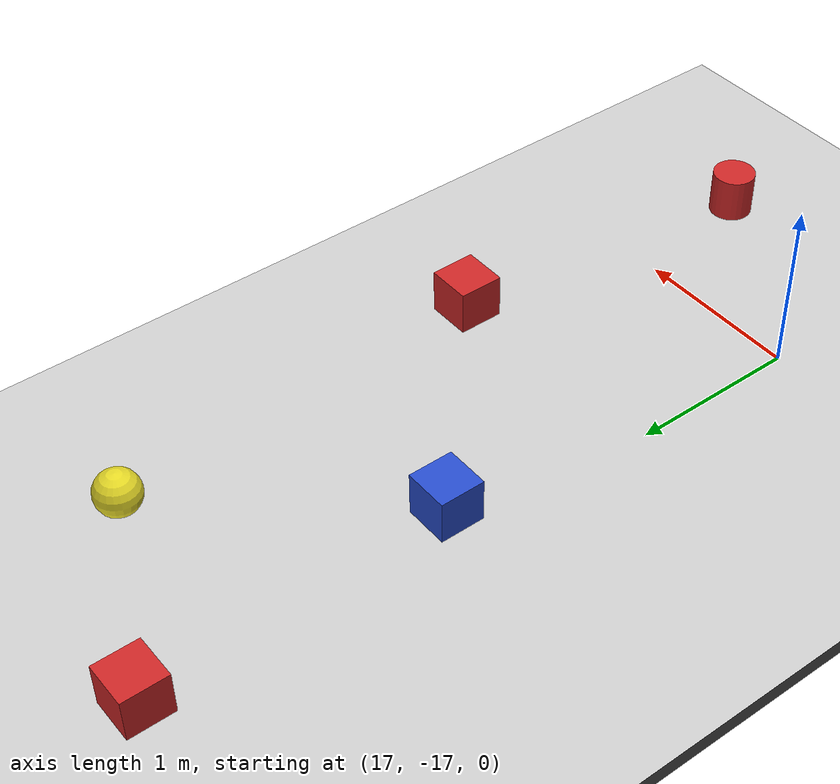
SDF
<sdf version="1.7">
 <world name="default">
  <model name="ground_plane">
   <static>1</static>
   <link name="link">
    <collision name="collision">
     <geometry><plane><normal>0 0 1</normal><size>100 100</size></plane></geometry>
     <surface><friction><ode><mu>100</mu><mu2>50</mu2></ode></friction></surface>
    </collision>
    <visual name="visual">
     <cast_shadows>0</cast_shadows>
     <geometry><plane><normal>0 0 1</normal><size>100 100</size></plane></geometry>
     <material>
      <script><uri>file://media/materials/scripts/gazebo.material</uri><name>Gazebo/Grey</name></script>
     </material>
    </visual>
    <velocity_decay><linear>0</linear><angular>0</angular></velocity_decay>
   </link>
  </model>
  <model name="asphalt_plane">
   <static>1</static>
   <link name="link">
    <collision name="collision"><geometry><box><size>20 20 0.1</size></box></geometry></collision>
    <visual name="visual">
     <cast_shadows>0</cast_shadows>
     <geometry><box><size>20 20 0.1</size></box></geometry>
     <material>
      <script>
       <uri>model://asphalt_plane/materials/scripts</uri>
       <uri>model://asphalt_plane/materials/textures</uri>
       <name>vrc/asphalt</name>
      </script>
     </material>
    </visual>
   </link>
   <pose>-9.73878 -10.1135 0 0 -0 0</pose>
  </model>
  <model name="unit_box_red_25_clone">
   <link name="link">
    <inertial>
     <mass>1</mass>
     <inertia>
      <ixx>0.166667</ixx>
      <ixy>0</ixy>
      <ixz>0</ixz>
      <iyy>0.166667</iyy>
      <iyz>0</iyz>
      <izz>0.166667</izz>
     </inertia>
    </inertial>
    <visual name="visual">
     <geometry><box><size>0.25 0.25 0.25</size></box></geometry>
     <material>
      <script><name>Gazebo/Red</name><uri>file://media/materials/scripts/gazebo.material</uri></script>
      <shader type="vertex"><normal_map>__default__</normal_map></shader>
      <ambient>1 0 0 1</ambient>
      <diffuse>1 0 0 1</diffuse>
      <specular>0.1 0.1 0.1 1</specular>
      <emissive>0 0 0 1</emissive>
     </material>
    </visual>
    <collision name="collision">
     <geometry><box><size>1 1 1</size></box></geometry>
     <surface>
      <friction>
       <ode><mu>1</mu><mu2>1</mu2><fdir1>0 0 0</fdir1><slip1>0</slip1><slip2>0</slip2></ode>
       <torsional>
        <coefficient>1</coefficient>
        <patch_radius>0</patch_radius>
        <surface_radius>0</surface_radius>
        <use_patch_radius>1</use_patch_radius>
        <ode><slip>0</slip></ode>
       </torsional>
      </friction>
      <bounce><restitution_coefficient>0</restitution_coefficient><threshold>1e+06</threshold></bounce>
      <contact>
       <collide_without_contact>0</collide_without_contact>
       <collide_without_contact_bitmask>1</collide_without_contact_bitmask>
       <collide_bitmask>1</collide_bitmask>
       <ode>
        <soft_cfm>0</soft_cfm>
        <soft_erp>0.2</soft_erp>
        <kp>1e+13</kp>
        <kd>1</kd>
        <max_vel>0.01</max_vel>
        <min_depth>0</min_depth>
       </ode>
       <bullet>
        <split_impulse>1</split_impulse>
        <split_impulse_penetration_threshold>-0.01</split_impulse_penetration_threshold>
        <soft_cfm>0</soft_cfm>
        <soft_erp>0.2</soft_erp>
        <kp>1e+13</kp>
        <kd>1</kd>
       </bullet>
      </contact>
     </surface>
    </collision>
   </link>
   <static>0</static>
   <pose>16.8257 -12.8406 0.549995 -9e-06 -1e-06 3.9e-05</pose>
  </model>
  <model name="unit_box_red_25_clone_2">
   <link name="link">
    <inertial>
     <mass>1</mass>
     <inertia>
      <ixx>0.166667</ixx>
      <ixy>0</ixy>
      <ixz>0</ixz>
      <iyy>0.166667</iyy>
      <iyz>0</iyz>
      <izz>0.166667</izz>
     </inertia>
    </inertial>
    <visual name="visual">
     <geometry><box><size>0.25 0.25 0.25</size></box></geometry>
     <material>
      <script><name>Gazebo/Red</name><uri>file://media/materials/scripts/gazebo.material</uri></script>
      <shader type="vertex"><normal_map>__default__</normal_map></shader>
      <ambient>1 0 0 1</ambient>
      <diffuse>1 0 0 1</diffuse>
      <specular>0.1 0.1 0.1 1</specular>
      <emissive>0 0 0 1</emissive>
     </material>
    </visual>
    <collision name="collision">
     <geometry><box><size>1 1 1</size></box></geometry>
     <surface>
      <friction>
       <ode><mu>1</mu><mu2>1</mu2><fdir1>0 0 0</fdir1><slip1>0</slip1><slip2>0</slip2></ode>
       <torsional>
        <coefficient>1</coefficient>
        <patch_radius>0</patch_radius>
        <surface_radius>0</surface_radius>
        <use_patch_radius>1</use_patch_radius>
        <ode><slip>0</slip></ode>
       </torsional>
      </friction>
      <bounce><restitution_coefficient>0</restitution_coefficient><threshold>1e+06</threshold></bounce>
      <contact>
       <collide_without_contact>0</collide_without_contact>
       <collide_without_contact_bitmask>1</collide_without_contact_bitmask>
       <collide_bitmask>1</collide_bitmask>
       <ode>
        <soft_cfm>0</soft_cfm>
        <soft_erp>0.2</soft_erp>
        <kp>1e+13</kp>
        <kd>1</kd>
        <max_vel>0.01</max_vel>
        <min_depth>0</min_depth>
       </ode>
       <bullet>
        <split_impulse>1</split_impulse>
        <split_impulse_penetration_threshold>-0.01</split_impulse_penetration_threshold>
        <soft_cfm>0</soft_cfm>
        <soft_erp>0.2</soft_erp>
        <kp>1e+13</kp>
        <kd>1</kd>
       </bullet>
      </contact>
     </surface>
    </collision>
   </link>
   <static>0</static>
   <pose>18.0023 -15.5728 0.549995 -9e-06 -1e-06 3.9e-05</pose>
  </model>
  <model name="unit_box_blue_25_clone">
   <link name="link">
    <inertial>
     <mass>1</mass>
     <inertia>
      <ixx>0.166667</ixx>
      <ixy>0</ixy>
      <ixz>0</ixz>
      <iyy>0.166667</iyy>
      <iyz>0</iyz>
      <izz>0.166667</izz>
     </inertia>
    </inertial>
    <visual name="visual">
     <geometry><box><size>0.25 0.25 0.25</size></box></geometry>
     <material>
      <script><name>Gazebo/Blue</name><uri>file://media/materials/scripts/gazebo.material</uri></script>
      <shader type="vertex"><normal_map>__default__</normal_map></shader>
      <ambient>0 0 1 1</ambient>
      <diffuse>0 0 1 1</diffuse>
      <specular>0.1 0.1 0.1 1</specular>
      <emissive>0 0 0 1</emissive>
     </material>
    </visual>
    <collision name="collision">
     <geometry><box><size>1 1 1</size></box></geometry>
     <surface>
      <friction>
       <ode><mu>1</mu><mu2>1</mu2><fdir1>0 0 0</fdir1><slip1>0</slip1><slip2>0</slip2></ode>
       <torsional>
        <coefficient>1</coefficient>
        <patch_radius>0</patch_radius>
        <surface_radius>0</surface_radius>
        <use_patch_radius>1</use_patch_radius>
        <ode><slip>0</slip></ode>
       </torsional>
      </friction>
      <bounce><restitution_coefficient>0</restitution_coefficient><threshold>1e+06</threshold></bounce>
      <contact>
       <collide_without_contact>0</collide_without_contact>
       <collide_without_contact_bitmask>1</collide_without_contact_bitmask>
       <collide_bitmask>1</collide_bitmask>
       <ode>
        <soft_cfm>0</soft_cfm>
        <soft_erp>0.2</soft_erp>
        <kp>1e+13</kp>
        <kd>1</kd>
        <max_vel>0.01</max_vel>
        <min_depth>0</min_depth>
       </ode>
       <bullet>
        <split_impulse>1</split_impulse>
        <split_impulse_penetration_threshold>-0.01</split_impulse_penetration_threshold>
        <soft_cfm>0</soft_cfm>
        <soft_erp>0.2</soft_erp>
        <kp>1e+13</kp>
        <kd>1</kd>
       </bullet>
      </contact>
     </surface>
    </collision>
   </link>
   <static>0</static>
   <pose>16.8891 -14.5699 0.55 0 -0 0</pose>
  </model>
  <model name="unit_cylinder_red_25_clone">
   <link name="link">
    <inertial>
     <mass>1</mass>
     <inertia><ixx>0.145833</ixx><ixy>0</ixy><ixz>0</ixz><iyy>0.145833</iyy><iyz>0</iyz><izz>0.125</izz></inertia>
    </inertial>
    <visual name="visual">
     <geometry><cylinder><radius>0.12</radius><length>0.25</length></cylinder></geometry>
     <material>
      <script><name>Gazebo/Red</name><uri>file://media/materials/scripts/gazebo.material</uri></script>
      <shader type="vertex"><normal_map>__default__</normal_map></shader>
      <ambient>1 0 0 1</ambient>
      <diffuse>1 0 0 1</diffuse>
      <specular>0.1 0.1 0.1 1</specular>
      <emissive>0 0 0 1</emissive>
     </material>
    </visual>
    <collision name="collision">
     <geometry><cylinder><radius>0.5</radius><length>1</length></cylinder></geometry>
     <surface>
      <friction>
       <ode><mu>1</mu><mu2>1</mu2><fdir1>0 0 0</fdir1><slip1>0</slip1><slip2>0</slip2></ode>
       <torsional>
        <coefficient>1</coefficient>
        <patch_radius>0</patch_radius>
        <surface_radius>0</surface_radius>
        <use_patch_radius>1</use_patch_radius>
        <ode><slip>0</slip></ode>
       </torsional>
      </friction>
      <bounce><restitution_coefficient>0</restitution_coefficient><threshold>1e+06</threshold></bounce>
      <contact>
       <collide_without_contact>0</collide_without_contact>
       <collide_without_contact_bitmask>1</collide_without_contact_bitmask>
       <collide_bitmask>1</collide_bitmask>
       <ode>
        <soft_cfm>0</soft_cfm>
        <soft_erp>0.2</soft_erp>
        <kp>1e+13</kp>
        <kd>1</kd>
        <max_vel>0.01</max_vel>
        <min_depth>0</min_depth>
       </ode>
       <bullet>
        <split_impulse>1</split_impulse>
        <split_impulse_penetration_threshold>-0.01</split_impulse_penetration_threshold>
        <soft_cfm>0</soft_cfm>
        <soft_erp>0.2</soft_erp>
        <kp>1e+13</kp>
        <kd>1</kd>
       </bullet>
      </contact>
     </surface>
    </collision>
   </link>
   <static>0</static>
   <pose>17.7866 -17.3401 0.550003 -6e-06 -1e-06 -8e-06</pose>
  </model>
  <model name="unit_sphere_yellow_25_clone">
   <link name="link">
    <inertial>
     <mass>1</mass>
     <inertia><ixx>0.1</ixx><ixy>0</ixy><ixz>0</ixz><iyy>0.1</iyy><iyz>0</iyz><izz>0.1</izz></inertia>
    </inertial>
    <visual name="visual">
     <geometry><sphere><radius>0.125</radius></sphere></geometry>
     <material>
      <script><name>Gazebo/Yellow</name><uri>file://media/materials/scripts/gazebo.material</uri></script>
      <shader type="vertex"><normal_map>__default__</normal_map></shader>
      <ambient>1 1 0 1</ambient>
      <diffuse>1 1 0 1</diffuse>
      <emissive>0 0 0 1</emissive>
     </material>
    </visual>
    <collision name="collision">
     <geometry><sphere><radius>0.5</radius></sphere></geometry>
     <surface>
      <friction>
       <ode><mu>1</mu><mu2>1</mu2><fdir1>0 0 0</fdir1><slip1>0</slip1><slip2>0</slip2></ode>
       <torsional>
        <coefficient>1</coefficient>
        <patch_radius>0</patch_radius>
        <surface_radius>0</surface_radius>
        <use_patch_radius>1</use_patch_radius>
        <ode><slip>0</slip></ode>
       </torsional>
      </friction>
      <bounce><restitution_coefficient>0</restitution_coefficient><threshold>1e+06</threshold></bounce>
      <contact>
       <collide_without_contact>0</collide_without_contact>
       <collide_without_contact_bitmask>1</collide_without_contact_bitmask>
       <collide_bitmask>1</collide_bitmask>
       <ode>
        <soft_cfm>0</soft_cfm>
        <soft_erp>0.2</soft_erp>
        <kp>1e+13</kp>
        <kd>1</kd>
        <max_vel>0.01</max_vel>
        <min_depth>0</min_depth>
       </ode>
       <bullet>
        <split_impulse>1</split_impulse>
        <split_impulse_penetration_threshold>-0.01</split_impulse_penetration_threshold>
        <soft_cfm>0</soft_cfm>
        <soft_erp>0.2</soft_erp>
        <kp>1e+13</kp>
        <kd>1</kd>
       </bullet>
      </contact>
     </surface>
    </collision>
   </link>
   <static>0</static>
   <pose>17.8722 -13.3671 0.55 0 -0 0</pose>
  </model>
 </world>
</sdf>
